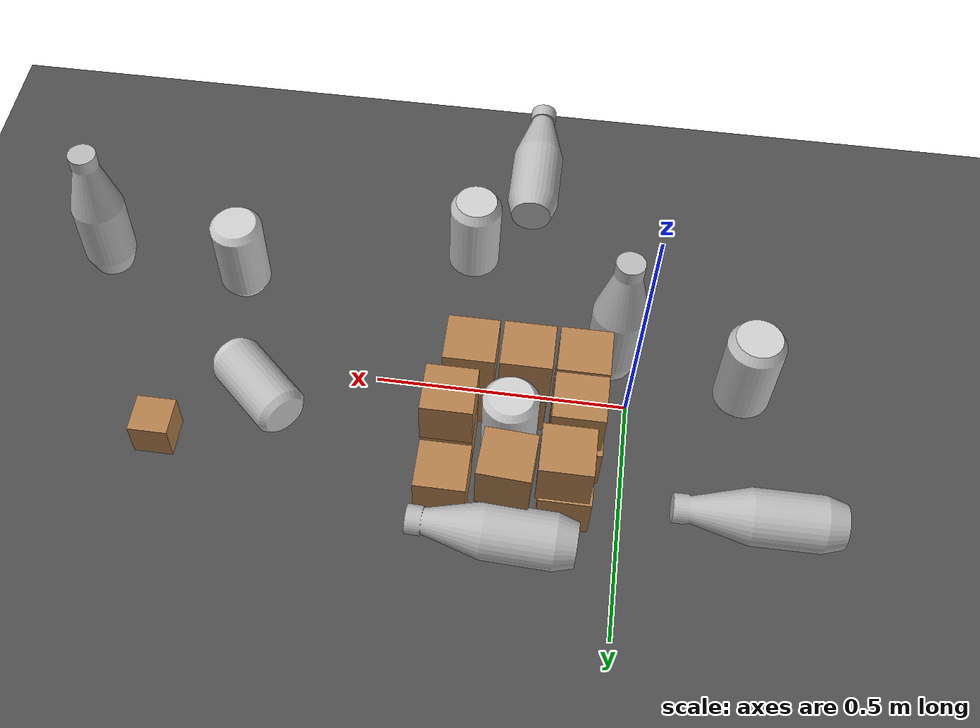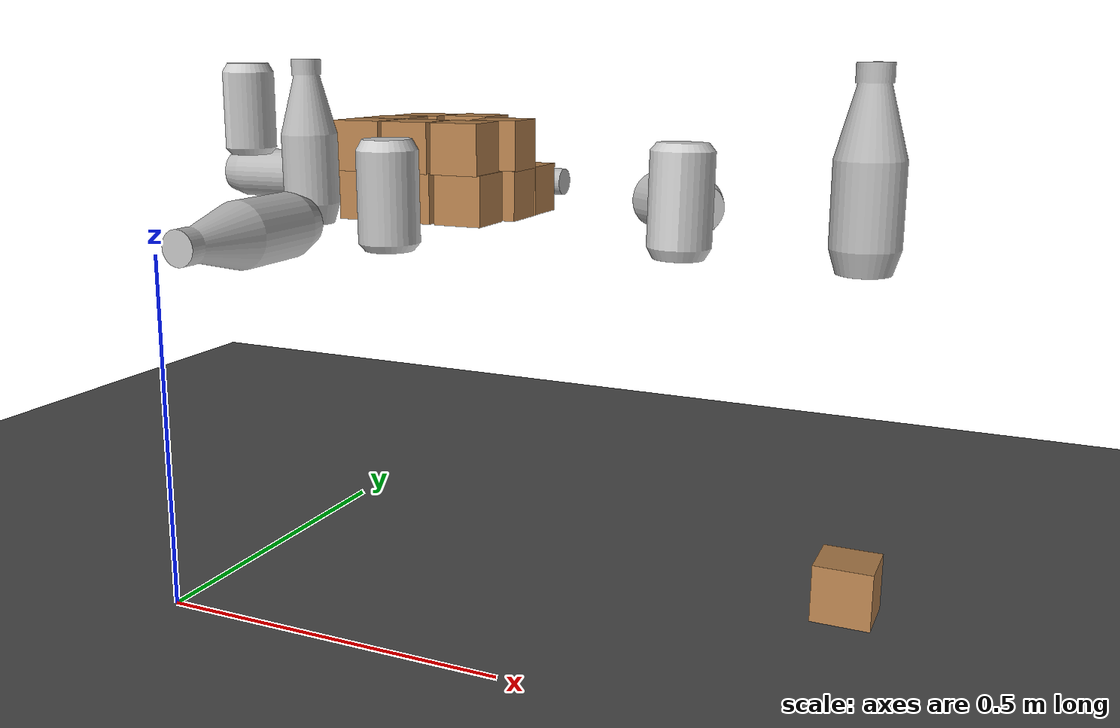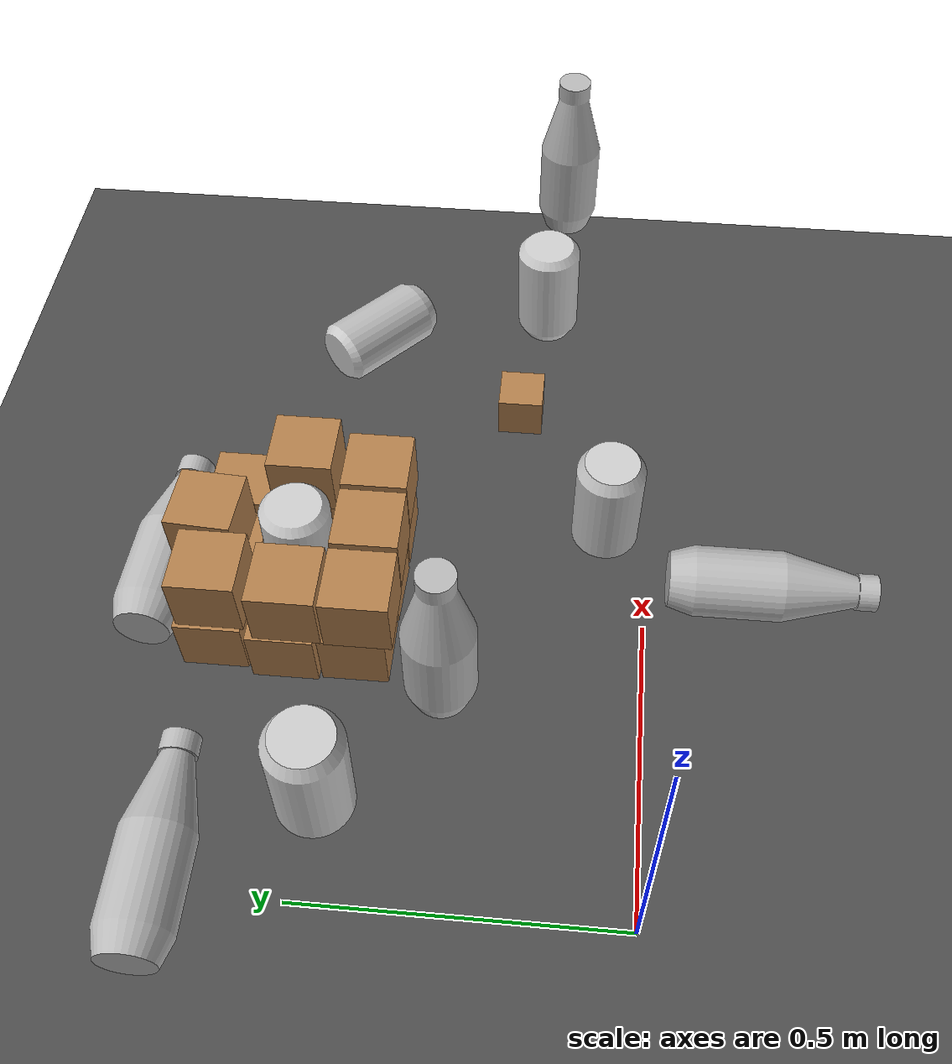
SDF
<sdf version="1.6">
 <world name="default">
  <model name="ground_plane">
   <static>1</static>
   <link name="link">
    <collision name="collision">
     <geometry><plane><normal>0 0 1</normal><size>100 100</size></plane></geometry>
     <surface><friction><ode><mu>100</mu><mu2>50</mu2></ode></friction></surface>
    </collision>
    <visual name="visual">
     <cast_shadows>0</cast_shadows>
     <geometry><plane><normal>0 0 1</normal><size>100 100</size></plane></geometry>
     <material>
      <script><uri>file://media/materials/scripts/gazebo.material</uri><name>Gazebo/Grey</name></script>
     </material>
    </visual>
   </link>
  </model>
  <model name="asphalt_plane">
   <static>1</static>
   <link name="link">
    <collision name="collision"><geometry><box><size>20 20 0.1</size></box></geometry></collision>
    <visual name="visual">
     <cast_shadows>0</cast_shadows>
     <geometry><box><size>20 20 0.1</size></box></geometry>
     <material>
      <script>
       <uri>model://asphalt_plane/materials/scripts</uri>
       <uri>model://asphalt_plane/materials/textures</uri>
       <name>vrc/asphalt</name>
      </script>
     </material>
    </visual>
   </link>
   <pose>-0.591173 -0.829147 0 0 -0 0</pose>
  </model>
  <model name="Green Can">
   <static>0</static>
   <link name="link">
    <inertial>
     <mass>0.3</mass>
     <inertia>
      <ixx>0.00055575</ixx>
      <ixy>0</ixy>
      <ixz>0</ixz>
      <iyy>0.00055575</iyy>
      <iyz>0</iyz>
      <izz>0.0001755</izz>
     </inertia>
    </inertial>
    <collision name="collision">
     <geometry><mesh><uri>model://greenCan/meshes/canGreen.dae</uri><scale>0.04 0.04 0.04</scale></mesh></geometry>
     <surface>
      <friction><ode><mu>3</mu><mu2>3</mu2></ode></friction>
      <contact><ode><kp>1e+07</kp><kd>1</kd><min_depth>0.001</min_depth><max_vel>0.5</max_vel></ode></contact>
     </surface>
    </collision>
    <visual name="visual">
     <geometry><mesh><uri>model://greenCan/meshes/canGreen.dae</uri><scale>0.04 0.04 0.04</scale></mesh></geometry>
    </visual>
   </link>
   <pose>-0.106511 0.362936 0.67431 0.009028 -0.01351 1.34011</pose>
  </model>
  <model name="Red Bottle">
   <static>0</static>
   <link name="link">
    <inertial>
     <mass>0.3</mass>
     <inertia>
      <ixx>0.00055575</ixx>
      <ixy>0</ixy>
      <ixz>0</ixz>
      <iyy>0.00055575</iyy>
      <iyz>0</iyz>
      <izz>0.0001755</izz>
     </inertia>
    </inertial>
    <collision name="collision">
     <geometry>
      <mesh><uri>model://redBottle/meshes/bottleRedBlue.dae</uri><scale>0.041 0.041 0.041</scale></mesh>
     </geometry>
     <surface>
      <friction><ode><mu>3</mu><mu2>3</mu2></ode></friction>
      <contact><ode><kp>1e+07</kp><kd>1</kd><min_depth>0.001</min_depth><max_vel>0.5</max_vel></ode></contact>
     </surface>
    </collision>
    <visual name="visual">
     <geometry>
      <mesh><uri>model://redBottle/meshes/bottleRedBlue.dae</uri><scale>0.041 0.041 0.041</scale></mesh>
     </geometry>
    </visual>
   </link>
   <pose>0.221391 0.599875 0.555957 1.57089 -0.434275 1.53199</pose>
  </model>
  <model name="Red Can">
   <static>0</static>
   <link name="link">
    <inertial>
     <mass>0.3</mass>
     <inertia>
      <ixx>0.00055575</ixx>
      <ixy>0</ixy>
      <ixz>0</ixz>
      <iyy>0.00055575</iyy>
      <iyz>0</iyz>
      <izz>0.0001755</izz>
     </inertia>
    </inertial>
    <collision name="collision">
     <geometry><mesh><uri>model://redCan/meshes/canRed.dae</uri><scale>0.04 0.04 0.04</scale></mesh></geometry>
     <surface>
      <friction><ode><mu>3</mu><mu2>3</mu2></ode></friction>
      <contact><ode><kp>1e+07</kp><kd>1</kd><min_depth>0.001</min_depth><max_vel>0.5</max_vel></ode></contact>
     </surface>
    </collision>
    <visual name="visual">
     <geometry><mesh><uri>model://redCan/meshes/canRed.dae</uri><scale>0.04 0.04 0.04</scale></mesh></geometry>
    </visual>
   </link>
   <pose>0.592503 0.403142 0.554807 -1.57079 0.098174 -2.32733</pose>
  </model>
  <model name="Red Can_clone">
   <static>0</static>
   <link name="link">
    <inertial>
     <mass>0.3</mass>
     <inertia>
      <ixx>0.00055575</ixx>
      <ixy>0</ixy>
      <ixz>0</ixz>
      <iyy>0.00055575</iyy>
      <iyz>0</iyz>
      <izz>0.0001755</izz>
     </inertia>
    </inertial>
    <collision name="collision">
     <geometry><mesh><uri>model://redCan/meshes/canRed.dae</uri><scale>0.04 0.04 0.04</scale></mesh></geometry>
     <surface>
      <friction><ode><mu>3</mu><mu2>3</mu2></ode></friction>
      <contact><ode><kp>1e+07</kp><kd>1</kd><min_depth>0.001</min_depth><max_vel>0.5</max_vel></ode></contact>
     </surface>
    </collision>
    <visual name="visual">
     <geometry><mesh><uri>model://redCan/meshes/canRed.dae</uri><scale>0.04 0.04 0.04</scale></mesh></geometry>
    </visual>
   </link>
   <pose>0.214 0.440795 0.58537 3.13009 -0.008451 -3.01726</pose>
  </model>
  <model name="Red Bottle_clone">
   <static>0</static>
   <link name="link">
    <inertial>
     <mass>0.3</mass>
     <inertia>
      <ixx>0.00055575</ixx>
      <ixy>0</ixy>
      <ixz>0</ixz>
      <iyy>0.00055575</iyy>
      <iyz>0</iyz>
      <izz>0.0001755</izz>
     </inertia>
    </inertial>
    <collision name="collision">
     <geometry>
      <mesh><uri>model://redBottle/meshes/bottleRedBlue.dae</uri><scale>0.041 0.041 0.041</scale></mesh>
     </geometry>
     <surface>
      <friction><ode><mu>3</mu><mu2>3</mu2></ode></friction>
      <contact><ode><kp>1e+07</kp><kd>1</kd><min_depth>0.001</min_depth><max_vel>0.5</max_vel></ode></contact>
     </surface>
    </collision>
    <visual name="visual">
     <geometry>
      <mesh><uri>model://redBottle/meshes/bottleRedBlue.dae</uri><scale>0.041 0.041 0.041</scale></mesh>
     </geometry>
    </visual>
   </link>
   <pose>0.887465 0.166701 0.633672 0.006413 -0.006965 0.490446</pose>
  </model>
  <model name="Green Can_clone_0">
   <static>0</static>
   <link name="link">
    <inertial>
     <mass>0.3</mass>
     <inertia>
      <ixx>0.00055575</ixx>
      <ixy>0</ixy>
      <ixz>0</ixz>
      <iyy>0.00055575</iyy>
      <iyz>0</iyz>
      <izz>0.0001755</izz>
     </inertia>
    </inertial>
    <collision name="collision">
     <geometry><mesh><uri>model://greenCan/meshes/canGreen.dae</uri><scale>0.04 0.04 0.04</scale></mesh></geometry>
     <surface>
      <friction><ode><mu>3</mu><mu2>3</mu2></ode></friction>
      <contact><ode><kp>1e+07</kp><kd>1</kd><min_depth>0.001</min_depth><max_vel>0.5</max_vel></ode></contact>
     </surface>
    </collision>
    <visual name="visual">
     <geometry><mesh><uri>model://greenCan/meshes/canGreen.dae</uri><scale>0.04 0.04 0.04</scale></mesh></geometry>
    </visual>
   </link>
   <pose>0.305803 0.090407 0.585213 0.006079 -0.006231 -0.005726</pose>
  </model>
  <model name="Blue Bottle_clone_0">
   <static>0</static>
   <link name="link">
    <inertial>
     <mass>0.3</mass>
     <inertia>
      <ixx>0.00055575</ixx>
      <ixy>0</ixy>
      <ixz>0</ixz>
      <iyy>0.00055575</iyy>
      <iyz>0</iyz>
      <izz>0.0001755</izz>
     </inertia>
    </inertial>
    <collision name="collision">
     <geometry>
      <mesh><uri>model://blueBottle/meshes/bottleBlue.dae</uri><scale>0.041 0.041 0.041</scale></mesh>
     </geometry>
     <surface>
      <friction><ode><mu>3</mu><mu2>3</mu2></ode></friction>
      <contact><ode><kp>1e+07</kp><kd>1</kd><min_depth>0.001</min_depth><max_vel>0.5</max_vel></ode></contact>
     </surface>
    </collision>
    <visual name="visual">
     <geometry>
      <mesh><uri>model://blueBottle/meshes/bottleBlue.dae</uri><scale>0.041 0.041 0.041</scale></mesh>
     </geometry>
    </visual>
   </link>
   <pose>0.22224 -0.101977 0.554804 1.5708 -1.47219 4.7e-05</pose>
  </model>
  <model name="Yellow Can">
   <static>0</static>
   <link name="link">
    <inertial>
     <mass>0.3</mass>
     <inertia>
      <ixx>0.00055575</ixx>
      <ixy>0</ixy>
      <ixz>0</ixz>
      <iyy>0.00055575</iyy>
      <iyz>0</iyz>
      <izz>0.0001755</izz>
     </inertia>
    </inertial>
    <collision name="collision">
     <geometry>
      <mesh><uri>model://yellowCan/meshes/canYellow.dae</uri><scale>0.04 0.04 0.04</scale></mesh>
     </geometry>
     <surface>
      <friction><ode><mu>3</mu><mu2>3</mu2></ode></friction>
      <contact><ode><kp>1e+07</kp><kd>1</kd><min_depth>0.001</min_depth><max_vel>0.5</max_vel></ode></contact>
     </surface>
    </collision>
    <visual name="visual">
     <geometry>
      <mesh><uri>model://yellowCan/meshes/canYellow.dae</uri><scale>0.04 0.04 0.04</scale></mesh>
     </geometry>
    </visual>
   </link>
   <pose>0.663661 0.182784 0.585308 3.12904 -0.0103 -1.30134</pose>
  </model>
  <model name="Yellow Bottle">
   <static>0</static>
   <link name="link">
    <inertial>
     <mass>0.3</mass>
     <inertia>
      <ixx>0.00055575</ixx>
      <ixy>0</ixy>
      <ixz>0</ixz>
      <iyy>0.00055575</iyy>
      <iyz>0</iyz>
      <izz>0.0001755</izz>
     </inertia>
    </inertial>
    <collision name="collision">
     <geometry>
      <mesh><uri>model://yellowBottle/meshes/bottleYellowBlue.dae</uri><scale>0.041 0.041 0.041</scale></mesh>
     </geometry>
     <surface>
      <friction><ode><mu>3</mu><mu2>3</mu2></ode></friction>
      <contact><ode><kp>1e+07</kp><kd>1</kd><min_depth>0.001</min_depth><max_vel>0.5</max_vel></ode></contact>
     </surface>
    </collision>
    <visual name="visual">
     <geometry>
      <mesh><uri>model://yellowBottle/meshes/bottleYellowBlue.dae</uri><scale>0.041 0.041 0.041</scale></mesh>
     </geometry>
    </visual>
   </link>
   <pose>-0.143023 0.526158 0.555761 1.55922 1.46586 1.56826</pose>
  </model>
  <model name="Yellow Bottle_clone_1">
   <static>0</static>
   <link name="link">
    <inertial>
     <mass>0.3</mass>
     <inertia>
      <ixx>0.00055575</ixx>
      <ixy>0</ixy>
      <ixz>0</ixz>
      <iyy>0.00055575</iyy>
      <iyz>0</iyz>
      <izz>0.0001755</izz>
     </inertia>
    </inertial>
    <collision name="collision">
     <geometry>
      <mesh><uri>model://yellowBottle/meshes/bottleYellowBlue.dae</uri><scale>0.041 0.041 0.041</scale></mesh>
     </geometry>
     <surface>
      <friction><ode><mu>3</mu><mu2>3</mu2></ode></friction>
      <contact><ode><kp>1e+07</kp><kd>1</kd><min_depth>0.001</min_depth><max_vel>0.5</max_vel></ode></contact>
     </surface>
    </collision>
    <visual name="visual">
     <geometry>
      <mesh><uri>model://yellowBottle/meshes/bottleYellowBlue.dae</uri><scale>0.041 0.041 0.041</scale></mesh>
     </geometry>
    </visual>
   </link>
   <pose>0.072574 0.262812 0.633582 0.01091 -0.0095 0.003925</pose>
  </model>
  <model name="wood_cube_7_5cm_clone_0_clone_0">
   <link name="link">
    <pose>0 0 0.0375 0 -0 0</pose>
    <inertial>
     <mass>0.2249</mass>
     <inertia>
      <ixx>0.000210844</ixx>
      <ixy>0</ixy>
      <ixz>0</ixz>
      <iyy>0.000210844</iyy>
      <iyz>0</iyz>
      <izz>0.000210844</izz>
     </inertia>
    </inertial>
    <collision name="collision">
     <geometry><box><size>0.075 0.075 0.075</size></box></geometry>
     <surface>
      <contact>
       <poissons_ratio>0.347</poissons_ratio>
       <elastic_modulus>8.8e+09</elastic_modulus>
       <ode><kp>100000</kp><kd>100</kd><max_vel>100</max_vel><min_depth>0.001</min_depth></ode>
      </contact>
      <friction>
       <torsional>
        <coefficient>1</coefficient>
        <use_patch_radius>0</use_patch_radius>
        <surface_radius>0.01</surface_radius>
       </torsional>
      </friction>
     </surface>
    </collision>
    <visual name="visual">
     <geometry><box><size>0.075 0.075 0.075</size></box></geometry>
     <material>
      <script><uri>file://media/materials/scripts/gazebo.material</uri><name>Gazebo/Wood</name></script>
     </material>
    </visual>
   </link>
   <pose>0.164585 0.361638 0.551489 1.25372 1.57077 1.221</pose>
  </model>
  <model name="wood_cube_7_5cm_clone_0_clone_1">
   <link name="link">
    <pose>0 0 0.0375 0 -0 0</pose>
    <inertial>
     <mass>0.2249</mass>
     <inertia>
      <ixx>0.000210844</ixx>
      <ixy>0</ixy>
      <ixz>0</ixz>
      <iyy>0.000210844</iyy>
      <iyz>0</iyz>
      <izz>0.000210844</izz>
     </inertia>
    </inertial>
    <collision name="collision">
     <geometry><box><size>0.075 0.075 0.075</size></box></geometry>
     <surface>
      <contact>
       <poissons_ratio>0.347</poissons_ratio>
       <elastic_modulus>8.8e+09</elastic_modulus>
       <ode><kp>100000</kp><kd>100</kd><max_vel>100</max_vel><min_depth>0.001</min_depth></ode>
      </contact>
      <friction>
       <torsional>
        <coefficient>1</coefficient>
        <use_patch_radius>0</use_patch_radius>
        <surface_radius>0.01</surface_radius>
       </torsional>
      </friction>
     </surface>
    </collision>
    <visual name="visual">
     <geometry><box><size>0.075 0.075 0.075</size></box></geometry>
     <material>
      <script><uri>file://media/materials/scripts/gazebo.material</uri><name>Gazebo/Wood</name></script>
     </material>
    </visual>
   </link>
   <pose>0.246565 0.359124 0.551489 0.930633 1.57078 0.930693</pose>
  </model>
  <model name="wood_cube_7_5cm_clone_0_clone_2">
   <link name="link">
    <pose>0 0 0.0375 0 -0 0</pose>
    <inertial>
     <mass>0.2249</mass>
     <inertia>
      <ixx>0.000210844</ixx>
      <ixy>0</ixy>
      <ixz>0</ixz>
      <iyy>0.000210844</iyy>
      <iyz>0</iyz>
      <izz>0.000210844</izz>
     </inertia>
    </inertial>
    <collision name="collision">
     <geometry><box><size>0.075 0.075 0.075</size></box></geometry>
     <surface>
      <contact>
       <poissons_ratio>0.347</poissons_ratio>
       <elastic_modulus>8.8e+09</elastic_modulus>
       <ode><kp>100000</kp><kd>100</kd><max_vel>100</max_vel><min_depth>0.001</min_depth></ode>
      </contact>
      <friction>
       <torsional>
        <coefficient>1</coefficient>
        <use_patch_radius>0</use_patch_radius>
        <surface_radius>0.01</surface_radius>
       </torsional>
      </friction>
     </surface>
    </collision>
    <visual name="visual">
     <geometry><box><size>0.075 0.075 0.075</size></box></geometry>
     <material>
      <script><uri>file://media/materials/scripts/gazebo.material</uri><name>Gazebo/Wood</name></script>
     </material>
    </visual>
   </link>
   <pose>0.082357 0.362289 0.551488 1.54731 1.57078 1.54737</pose>
  </model>
  <model name="wood_cube_7_5cm_clone_0_clone_3">
   <link name="link">
    <pose>0 0 0.0375 0 -0 0</pose>
    <inertial>
     <mass>0.2249</mass>
     <inertia>
      <ixx>0.000210844</ixx>
      <ixy>0</ixy>
      <ixz>0</ixz>
      <iyy>0.000210844</iyy>
      <iyz>0</iyz>
      <izz>0.000210844</izz>
     </inertia>
    </inertial>
    <collision name="collision">
     <geometry><box><size>0.075 0.075 0.075</size></box></geometry>
     <surface>
      <contact>
       <poissons_ratio>0.347</poissons_ratio>
       <elastic_modulus>8.8e+09</elastic_modulus>
       <ode><kp>100000</kp><kd>100</kd><max_vel>100</max_vel><min_depth>0.001</min_depth></ode>
      </contact>
      <friction>
       <torsional>
        <coefficient>1</coefficient>
        <use_patch_radius>0</use_patch_radius>
        <surface_radius>0.01</surface_radius>
       </torsional>
      </friction>
     </surface>
    </collision>
    <visual name="visual">
     <geometry><box><size>0.075 0.075 0.075</size></box></geometry>
     <material>
      <script><uri>file://media/materials/scripts/gazebo.material</uri><name>Gazebo/Wood</name></script>
     </material>
    </visual>
   </link>
   <pose>0.079254 0.441036 0.55149 -2.56213 1.57079 -2.56204</pose>
  </model>
  <model name="wood_cube_7_5cm_clone_0_clone_4">
   <link name="link">
    <pose>0 0 0.0375 0 -0 0</pose>
    <inertial>
     <mass>0.2249</mass>
     <inertia>
      <ixx>0.000210844</ixx>
      <ixy>0</ixy>
      <ixz>0</ixz>
      <iyy>0.000210844</iyy>
      <iyz>0</iyz>
      <izz>0.000210844</izz>
     </inertia>
    </inertial>
    <collision name="collision">
     <geometry><box><size>0.075 0.075 0.075</size></box></geometry>
     <surface>
      <contact>
       <poissons_ratio>0.347</poissons_ratio>
       <elastic_modulus>8.8e+09</elastic_modulus>
       <ode><kp>100000</kp><kd>100</kd><max_vel>100</max_vel><min_depth>0.001</min_depth></ode>
      </contact>
      <friction>
       <torsional>
        <coefficient>1</coefficient>
        <use_patch_radius>0</use_patch_radius>
        <surface_radius>0.01</surface_radius>
       </torsional>
      </friction>
     </surface>
    </collision>
    <visual name="visual">
     <geometry><box><size>0.075 0.075 0.075</size></box></geometry>
     <material>
      <script><uri>file://media/materials/scripts/gazebo.material</uri><name>Gazebo/Wood</name></script>
     </material>
    </visual>
   </link>
   <pose>0.088143 0.522552 0.55149 2.41345 1.57077 2.41351</pose>
  </model>
  <model name="wood_cube_7_5cm_clone_0_clone_5">
   <link name="link">
    <pose>0 0 0.0375 0 -0 0</pose>
    <inertial>
     <mass>0.2249</mass>
     <inertia>
      <ixx>0.000210844</ixx>
      <ixy>0</ixy>
      <ixz>0</ixz>
      <iyy>0.000210844</iyy>
      <iyz>0</iyz>
      <izz>0.000210844</izz>
     </inertia>
    </inertial>
    <collision name="collision">
     <geometry><box><size>0.075 0.075 0.075</size></box></geometry>
     <surface>
      <contact>
       <poissons_ratio>0.347</poissons_ratio>
       <elastic_modulus>8.8e+09</elastic_modulus>
       <ode><kp>100000</kp><kd>100</kd><max_vel>100</max_vel><min_depth>0.001</min_depth></ode>
      </contact>
      <friction>
       <torsional>
        <coefficient>1</coefficient>
        <use_patch_radius>0</use_patch_radius>
        <surface_radius>0.01</surface_radius>
       </torsional>
      </friction>
     </surface>
    </collision>
    <visual name="visual">
     <geometry><box><size>0.075 0.075 0.075</size></box></geometry>
     <material>
      <script><uri>file://media/materials/scripts/gazebo.material</uri><name>Gazebo/Wood</name></script>
     </material>
    </visual>
   </link>
   <pose>0.263141 0.440989 0.551489 -1.71273 1.57079 -1.71267</pose>
  </model>
  <model name="wood_cube_7_5cm_clone_0_clone_6">
   <link name="link">
    <pose>0 0 0.0375 0 -0 0</pose>
    <inertial>
     <mass>0.2249</mass>
     <inertia>
      <ixx>0.000210844</ixx>
      <ixy>0</ixy>
      <ixz>0</ixz>
      <iyy>0.000210844</iyy>
      <iyz>0</iyz>
      <izz>0.000210844</izz>
     </inertia>
    </inertial>
    <collision name="collision">
     <geometry><box><size>0.075 0.075 0.075</size></box></geometry>
     <surface>
      <contact>
       <poissons_ratio>0.347</poissons_ratio>
       <elastic_modulus>8.8e+09</elastic_modulus>
       <ode><kp>100000</kp><kd>100</kd><max_vel>100</max_vel><min_depth>0.001</min_depth></ode>
      </contact>
      <friction>
       <torsional>
        <coefficient>1</coefficient>
        <use_patch_radius>0</use_patch_radius>
        <surface_radius>0.01</surface_radius>
       </torsional>
      </friction>
     </surface>
    </collision>
    <visual name="visual">
     <geometry><box><size>0.075 0.075 0.075</size></box></geometry>
     <material>
      <script><uri>file://media/materials/scripts/gazebo.material</uri><name>Gazebo/Wood</name></script>
     </material>
    </visual>
   </link>
   <pose>0.174067 0.521035 0.551489 -1.47154 1.57073 -1.47145</pose>
  </model>
  <model name="wood_cube_7_5cm_clone_0_clone_7">
   <link name="link">
    <pose>0 0 0.0375 0 -0 0</pose>
    <inertial>
     <mass>0.2249</mass>
     <inertia>
      <ixx>0.000210844</ixx>
      <ixy>0</ixy>
      <ixz>0</ixz>
      <iyy>0.000210844</iyy>
      <iyz>0</iyz>
      <izz>0.000210844</izz>
     </inertia>
    </inertial>
    <collision name="collision">
     <geometry><box><size>0.075 0.075 0.075</size></box></geometry>
     <surface>
      <contact>
       <poissons_ratio>0.347</poissons_ratio>
       <elastic_modulus>8.8e+09</elastic_modulus>
       <ode><kp>100000</kp><kd>100</kd><max_vel>100</max_vel><min_depth>0.001</min_depth></ode>
      </contact>
      <friction>
       <torsional>
        <coefficient>1</coefficient>
        <use_patch_radius>0</use_patch_radius>
        <surface_radius>0.01</surface_radius>
       </torsional>
      </friction>
     </surface>
    </collision>
    <visual name="visual">
     <geometry><box><size>0.075 0.075 0.075</size></box></geometry>
     <material>
      <script><uri>file://media/materials/scripts/gazebo.material</uri><name>Gazebo/Wood</name></script>
     </material>
    </visual>
   </link>
   <pose>0.262172 0.523249 0.551488 -5.9e-05 1.57078 1e-06</pose>
  </model>
  <model name="wood_cube_7_5cm_clone_0_clone_6_clone">
   <link name="link">
    <pose>0.295258 0.523251 0.625485 -1.57078 -0 -1.57074</pose>
    <inertial>
     <mass>0.2249</mass>
     <inertia>
      <ixx>0.000210844</ixx>
      <ixy>0</ixy>
      <ixz>0</ixz>
      <iyy>0.000210844</iyy>
      <iyz>0</iyz>
      <izz>0.000210844</izz>
     </inertia>
    </inertial>
    <collision name="collision">
     <geometry><box><size>0.075 0.075 0.075</size></box></geometry>
     <surface>
      <contact>
       <poissons_ratio>0.347</poissons_ratio>
       <elastic_modulus>8.8e+09</elastic_modulus>
       <ode><kp>100000</kp><kd>100</kd><max_vel>100</max_vel><min_depth>0.001</min_depth></ode>
      </contact>
      <friction>
       <torsional>
        <coefficient>1</coefficient>
        <use_patch_radius>0</use_patch_radius>
        <surface_radius>0.01</surface_radius>
       </torsional>
      </friction>
     </surface>
    </collision>
    <visual name="visual">
     <geometry><box><size>0.075 0.075 0.075</size></box></geometry>
     <material>
      <script><uri>file://media/materials/scripts/gazebo.material</uri><name>Gazebo/Wood</name></script>
     </material>
    </visual>
   </link>
   <pose>0.257758 0.523249 0.625484 -1.57078 -0 -1.57074</pose>
  </model>
  <model name="wood_cube_7_5cm_clone_0_clone_6_clone_clone">
   <link name="link">
    <pose>0 0 0.0375 0 -0 0</pose>
    <inertial>
     <mass>0.2249</mass>
     <inertia>
      <ixx>0.000210844</ixx>
      <ixy>0</ixy>
      <ixz>0</ixz>
      <iyy>0.000210844</iyy>
      <iyz>0</iyz>
      <izz>0.000210844</izz>
     </inertia>
    </inertial>
    <collision name="collision">
     <geometry><box><size>0.075 0.075 0.075</size></box></geometry>
     <surface>
      <contact>
       <poissons_ratio>0.347</poissons_ratio>
       <elastic_modulus>8.8e+09</elastic_modulus>
       <ode><kp>100000</kp><kd>100</kd><max_vel>100</max_vel><min_depth>0.001</min_depth></ode>
      </contact>
      <friction>
       <torsional>
        <coefficient>1</coefficient>
        <use_patch_radius>0</use_patch_radius>
        <surface_radius>0.01</surface_radius>
       </torsional>
      </friction>
     </surface>
    </collision>
    <visual name="visual">
     <geometry><box><size>0.075 0.075 0.075</size></box></geometry>
     <material>
      <script><uri>file://media/materials/scripts/gazebo.material</uri><name>Gazebo/Wood</name></script>
     </material>
    </visual>
   </link>
   <pose>0.172452 0.539498 0.625484 -1.57079 -8.1e-05 -1.63206</pose>
  </model>
  <model name="wood_cube_7_5cm_clone_0_clone_6_clone_clone_0">
   <link name="link">
    <pose>0 0 0.0375 0 -0 0</pose>
    <inertial>
     <mass>0.2249</mass>
     <inertia>
      <ixx>0.000210844</ixx>
      <ixy>0</ixy>
      <ixz>0</ixz>
      <iyy>0.000210844</iyy>
      <iyz>0</iyz>
      <izz>0.000210844</izz>
     </inertia>
    </inertial>
    <collision name="collision">
     <geometry><box><size>0.075 0.075 0.075</size></box></geometry>
     <surface>
      <contact>
       <poissons_ratio>0.347</poissons_ratio>
       <elastic_modulus>8.8e+09</elastic_modulus>
       <ode><kp>100000</kp><kd>100</kd><max_vel>100</max_vel><min_depth>0.001</min_depth></ode>
      </contact>
      <friction>
       <torsional>
        <coefficient>1</coefficient>
        <use_patch_radius>0</use_patch_radius>
        <surface_radius>0.01</surface_radius>
       </torsional>
      </friction>
     </surface>
    </collision>
    <visual name="visual">
     <geometry><box><size>0.075 0.075 0.075</size></box></geometry>
     <material>
      <script><uri>file://media/materials/scripts/gazebo.material</uri><name>Gazebo/Wood</name></script>
     </material>
    </visual>
   </link>
   <pose>0.092399 0.518758 0.625486 -1.57082 1.8e-05 -1.57074</pose>
  </model>
  <model name="wood_cube_7_5cm_clone_0_clone_6_clone_clone_1">
   <link name="link">
    <pose>0 0 0.0375 0 -0 0</pose>
    <inertial>
     <mass>0.2249</mass>
     <inertia>
      <ixx>0.000210844</ixx>
      <ixy>0</ixy>
      <ixz>0</ixz>
      <iyy>0.000210844</iyy>
      <iyz>0</iyz>
      <izz>0.000210844</izz>
     </inertia>
    </inertial>
    <collision name="collision">
     <geometry><box><size>0.075 0.075 0.075</size></box></geometry>
     <surface>
      <contact>
       <poissons_ratio>0.347</poissons_ratio>
       <elastic_modulus>8.8e+09</elastic_modulus>
       <ode><kp>100000</kp><kd>100</kd><max_vel>100</max_vel><min_depth>0.001</min_depth></ode>
      </contact>
      <friction>
       <torsional>
        <coefficient>1</coefficient>
        <use_patch_radius>0</use_patch_radius>
        <surface_radius>0.01</surface_radius>
       </torsional>
      </friction>
     </surface>
    </collision>
    <visual name="visual">
     <geometry><box><size>0.075 0.075 0.075</size></box></geometry>
     <material>
      <script><uri>file://media/materials/scripts/gazebo.material</uri><name>Gazebo/Wood</name></script>
     </material>
    </visual>
   </link>
   <pose>0.263502 0.443516 0.625485 -1.5708 -1.2e-05 -1.57074</pose>
  </model>
  <model name="wood_cube_7_5cm_clone_0_clone_6_clone_clone_2">
   <link name="link">
    <pose>0 0 0.0375 0 -0 0</pose>
    <inertial>
     <mass>0.2249</mass>
     <inertia>
      <ixx>0.000210844</ixx>
      <ixy>0</ixy>
      <ixz>0</ixz>
      <iyy>0.000210844</iyy>
      <iyz>0</iyz>
      <izz>0.000210844</izz>
     </inertia>
    </inertial>
    <collision name="collision">
     <geometry><box><size>0.075 0.075 0.075</size></box></geometry>
     <surface>
      <contact>
       <poissons_ratio>0.347</poissons_ratio>
       <elastic_modulus>8.8e+09</elastic_modulus>
       <ode><kp>100000</kp><kd>100</kd><max_vel>100</max_vel><min_depth>0.001</min_depth></ode>
      </contact>
      <friction>
       <torsional>
        <coefficient>1</coefficient>
        <use_patch_radius>0</use_patch_radius>
        <surface_radius>0.01</surface_radius>
       </torsional>
      </friction>
     </surface>
    </collision>
    <visual name="visual">
     <geometry><box><size>0.075 0.075 0.075</size></box></geometry>
     <material>
      <script><uri>file://media/materials/scripts/gazebo.material</uri><name>Gazebo/Wood</name></script>
     </material>
    </visual>
   </link>
   <pose>0.243429 0.354913 0.625485 -1.57078 2e-05 -1.57074</pose>
  </model>
  <model name="wood_cube_7_5cm_clone_0_clone_6_clone_clone_3">
   <link name="link">
    <pose>0 0 0.0375 0 -0 0</pose>
    <inertial>
     <mass>0.2249</mass>
     <inertia>
      <ixx>0.000210844</ixx>
      <ixy>0</ixy>
      <ixz>0</ixz>
      <iyy>0.000210844</iyy>
      <iyz>0</iyz>
      <izz>0.000210844</izz>
     </inertia>
    </inertial>
    <collision name="collision">
     <geometry><box><size>0.075 0.075 0.075</size></box></geometry>
     <surface>
      <contact>
       <poissons_ratio>0.347</poissons_ratio>
       <elastic_modulus>8.8e+09</elastic_modulus>
       <ode><kp>100000</kp><kd>100</kd><max_vel>100</max_vel><min_depth>0.001</min_depth></ode>
      </contact>
      <friction>
       <torsional>
        <coefficient>1</coefficient>
        <use_patch_radius>0</use_patch_radius>
        <surface_radius>0.01</surface_radius>
       </torsional>
      </friction>
     </surface>
    </collision>
    <visual name="visual">
     <geometry><box><size>0.075 0.075 0.075</size></box></geometry>
     <material>
      <script><uri>file://media/materials/scripts/gazebo.material</uri><name>Gazebo/Wood</name></script>
     </material>
    </visual>
   </link>
   <pose>0.162298 0.354195 0.625485 -1.57079 3e-05 -1.57077</pose>
  </model>
  <model name="wood_cube_7_5cm_clone_0_clone_6_clone_clone_4">
   <link name="link">
    <pose>0 0 0.0375 0 -0 0</pose>
    <inertial>
     <mass>0.2249</mass>
     <inertia>
      <ixx>0.000210844</ixx>
      <ixy>0</ixy>
      <ixz>0</ixz>
      <iyy>0.000210844</iyy>
      <iyz>0</iyz>
      <izz>0.000210844</izz>
     </inertia>
    </inertial>
    <collision name="collision">
     <geometry><box><size>0.075 0.075 0.075</size></box></geometry>
     <surface>
      <contact>
       <poissons_ratio>0.347</poissons_ratio>
       <elastic_modulus>8.8e+09</elastic_modulus>
       <ode><kp>100000</kp><kd>100</kd><max_vel>100</max_vel><min_depth>0.001</min_depth></ode>
      </contact>
      <friction>
       <torsional>
        <coefficient>1</coefficient>
        <use_patch_radius>0</use_patch_radius>
        <surface_radius>0.01</surface_radius>
       </torsional>
      </friction>
     </surface>
    </collision>
    <visual name="visual">
     <geometry><box><size>0.075 0.075 0.075</size></box></geometry>
     <material>
      <script><uri>file://media/materials/scripts/gazebo.material</uri><name>Gazebo/Wood</name></script>
     </material>
    </visual>
   </link>
   <pose>0.081292 0.353505 0.625484 -1.57079 2.4e-05 -1.57073</pose>
  </model>
  <model name="wood_cube_7_5cm_clone_0_clone_6_clone_clone_5">
   <link name="link">
    <pose>0 0 0.0375 0 -0 0</pose>
    <inertial>
     <mass>0.2249</mass>
     <inertia>
      <ixx>0.000210844</ixx>
      <ixy>0</ixy>
      <ixz>0</ixz>
      <iyy>0.000210844</iyy>
      <iyz>0</iyz>
      <izz>0.000210844</izz>
     </inertia>
    </inertial>
    <collision name="collision">
     <geometry><box><size>0.075 0.075 0.075</size></box></geometry>
     <surface>
      <contact>
       <poissons_ratio>0.347</poissons_ratio>
       <elastic_modulus>8.8e+09</elastic_modulus>
       <ode><kp>100000</kp><kd>100</kd><max_vel>100</max_vel><min_depth>0.001</min_depth></ode>
      </contact>
      <friction>
       <torsional>
        <coefficient>1</coefficient>
        <use_patch_radius>0</use_patch_radius>
        <surface_radius>0.01</surface_radius>
       </torsional>
      </friction>
     </surface>
    </collision>
    <visual name="visual">
     <geometry><box><size>0.075 0.075 0.075</size></box></geometry>
     <material>
      <script><uri>file://media/materials/scripts/gazebo.material</uri><name>Gazebo/Wood</name></script>
     </material>
    </visual>
   </link>
   <pose>0.082068 0.431802 0.625487 -1.5708 -9e-06 -1.57055</pose>
  </model>
 </world>
</sdf>
